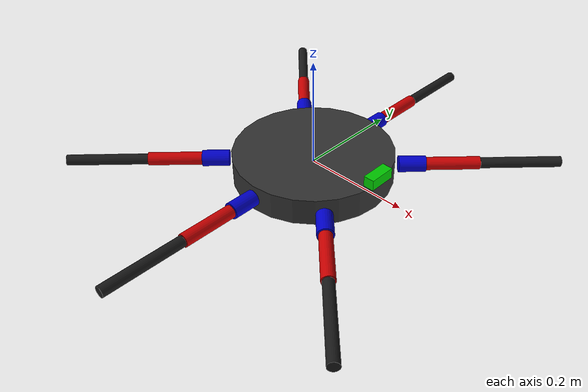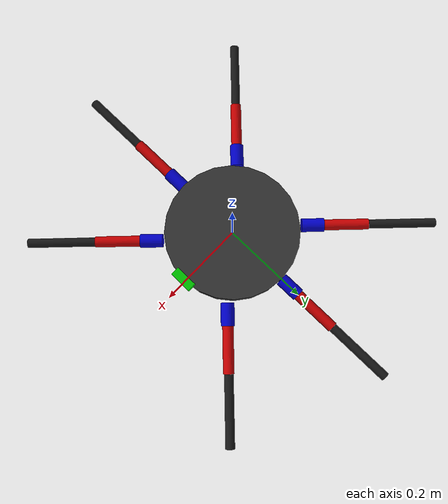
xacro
<?xml version="1.0"?>
<robot xmlns:xacro="http://www.ros.org/wiki/xacro" name="hexapod">

  <!-- ==================== PARAMETERS & DIMENSIONS ==================== -->
  <xacro:property name="body_radius" value="0.15"/>
  <xacro:property name="body_height" value="0.05"/>
  <xacro:property name="body_mass" value="2.0"/>

  <xacro:property name="coxa_len" value="0.05"/>
  <xacro:property name="femur_len" value="0.10"/>
  <xacro:property name="tibia_len" value="0.15"/>

  <xacro:property name="coxa_mass" value="0.1"/>
  <xacro:property name="femur_mass" value="0.15"/>
  <xacro:property name="tibia_mass" value="0.1"/>

  <!-- Standard Inertia Macros -->
  <xacro:macro name="cylinder_inertia" params="m r h">
    <inertia ixx="${(m/12)*(3*r*r + h*h)}" ixy="0.0" ixz="0.0"
             iyy="${(m/12)*(3*r*r + h*h)}" iyz="0.0"
             izz="${(m/2)*(r*r)}"/>
  </xacro:macro>

  <xacro:macro name="box_inertia" params="m x y z">
    <inertia ixx="${(m/12)*(y*y + z*z)}" ixy="0.0" ixz="0.0"
             iyy="${(m/12)*(x*x + z*z)}" iyz="0.0"
             izz="${(m/12)*(x*x + y*y)}"/>
  </xacro:macro>

  <!-- ==================== BASE LINK ==================== -->
  <link name="base_link">
    <visual>
      <geometry>
        <cylinder radius="${body_radius}" length="${body_height}"/>
      </geometry>
      <material name="dark_grey">
        <color rgba="0.2 0.2 0.2 1.0"/>
      </material>
    </visual>
    <collision>
      <geometry>
        <cylinder radius="${body_radius}" length="${body_height}"/>
      </geometry>
    </collision>
    <inertial>
      <mass value="${body_mass}"/>
      <xacro:cylinder_inertia m="${body_mass}" r="${body_radius}" h="${body_height}"/>
    </inertial>
  </link>

  <!-- ==================== LEG MACRO ==================== -->
  <xacro:macro name="hexapod_leg" params="prefix x_offset y_offset yaw_offset">

    <!-- COXA JOINT & LINK -->
    <joint name="${prefix}_coxa_joint" type="revolute">
      <parent link="base_link"/>
      <child link="${prefix}_coxa_link"/>
      <origin xyz="${x_offset} ${y_offset} 0" rpy="0 0 ${yaw_offset}"/>
      <axis xyz="0 0 1"/>
      <limit lower="-1.57" upper="1.57" effort="10.0" velocity="3.0"/>
    </joint>

    <link name="${prefix}_coxa_link">
      <visual>
        <origin xyz="${coxa_len/2} 0 0" rpy="0 1.5708 0"/>
        <geometry>
          <cylinder radius="0.015" length="${coxa_len}"/>
        </geometry>
        <material name="blue">
          <color rgba="0.0 0.0 0.8 1.0"/>
        </material>
      </visual>
      <collision>
        <origin xyz="${coxa_len/2} 0 0" rpy="0 1.5708 0"/>
        <geometry>
          <cylinder radius="0.015" length="${coxa_len}"/>
        </geometry>
      </collision>
      <inertial>
        <origin xyz="${coxa_len/2} 0 0" rpy="0 0 0"/>
        <mass value="${coxa_mass}"/>
        <xacro:cylinder_inertia m="${coxa_mass}" r="0.015" h="${coxa_len}"/>
      </inertial>
    </link>

    <!-- FEMUR JOINT & LINK -->
    <joint name="${prefix}_femur_joint" type="revolute">
      <parent link="${prefix}_coxa_link"/>
      <child link="${prefix}_femur_link"/>
      <origin xyz="${coxa_len} 0 0" rpy="0 0 0"/>
      <axis xyz="0 -1 0"/>
      <limit lower="-1.57" upper="1.57" effort="10.0" velocity="3.0"/>
    </joint>

    <link name="${prefix}_femur_link">
      <visual>
        <origin xyz="${femur_len/2} 0 0" rpy="0 1.5708 0"/>
        <geometry>
          <cylinder radius="0.012" length="${femur_len}"/>
        </geometry>
        <material name="red">
          <color rgba="0.8 0.0 0.0 1.0"/>
        </material>
      </visual>
      <collision>
        <origin xyz="${femur_len/2} 0 0" rpy="0 1.5708 0"/>
        <geometry>
          <cylinder radius="0.012" length="${femur_len}"/>
        </geometry>
      </collision>
      <inertial>
        <origin xyz="${femur_len/2} 0 0" rpy="0 0 0"/>
        <mass value="${femur_mass}"/>
        <xacro:cylinder_inertia m="${femur_mass}" r="0.012" h="${femur_len}"/>
      </inertial>
    </link>

    <!-- TIBIA JOINT & LINK -->
    <joint name="${prefix}_tibia_joint" type="revolute">
      <parent link="${prefix}_femur_link"/>
      <child link="${prefix}_tibia_link"/>
      <origin xyz="${femur_len} 0 0" rpy="0 0 0"/>
      <axis xyz="0 -1 0"/>
      <limit lower="-2.5" upper="0.5" effort="10.0" velocity="3.0"/>
    </joint>

    <link name="${prefix}_tibia_link">
      <visual>
        <origin xyz="${tibia_len/2} 0 0" rpy="0 1.5708 0"/>
        <geometry>
          <cylinder radius="0.01" length="${tibia_len}"/>
        </geometry>
        <material name="black">
          <color rgba="0.1 0.1 0.1 1.0"/>
        </material>
      </visual>
      <collision>
        <origin xyz="${tibia_len/2} 0 0" rpy="0 1.5708 0"/>
        <geometry>
          <cylinder radius="0.01" length="${tibia_len}"/>
        </geometry>
      </collision>
      <inertial>
        <origin xyz="${tibia_len/2} 0 0" rpy="0 0 0"/>
        <mass value="${tibia_mass}"/>
        <xacro:cylinder_inertia m="${tibia_mass}" r="0.01" h="${tibia_len}"/>
      </inertial>
    </link>

  </xacro:macro>

  <!-- ==================== INSTANTIATE 6 LEGS ==================== -->
  <xacro:hexapod_leg prefix="leg1_front_right" x_offset="0.12"  y_offset="-0.10" yaw_offset="-0.7854"/>
  <xacro:hexapod_leg prefix="leg2_mid_right"   x_offset="0.0"   y_offset="-0.15" yaw_offset="-1.5708"/>
  <xacro:hexapod_leg prefix="leg3_back_right"  x_offset="-0.12" y_offset="-0.10" yaw_offset="-2.3562"/>
  <xacro:hexapod_leg prefix="leg4_front_left"  x_offset="0.12"  y_offset="0.10"  yaw_offset="0.7854"/>
  <xacro:hexapod_leg prefix="leg5_mid_left"    x_offset="0.0"   y_offset="0.15"  yaw_offset="1.5708"/>
  <xacro:hexapod_leg prefix="leg6_back_left"   x_offset="-0.12" y_offset="0.10"  yaw_offset="2.3562"/>

  <!-- ==================== CAMERA LINK & SENSOR ==================== -->
  <joint name="camera_joint" type="fixed">
    <parent link="base_link"/>
    <child link="camera_link"/>
    <origin xyz="${body_radius} 0 0.04" rpy="0 0 0"/>
  </joint>

  <link name="camera_link">
    <visual>
      <geometry>
        <box size="0.02 0.05 0.02"/>
      </geometry>
      <material name="green">
        <color rgba="0.0 0.8 0.0 1.0"/>
      </material>
    </visual>
    <collision>
      <geometry>
        <box size="0.02 0.05 0.02"/>
      </geometry>
    </collision>
    <inertial>
      <mass value="0.05"/>
      <xacro:box_inertia m="0.05" x="0.02" y="0.05" z="0.02"/>
    </inertial>
  </link>

  <gazebo reference="camera_link">
    <sensor type="camera" name="pi_camera">
      <update_rate>30.0</update_rate>
      <camera name="head">
        <horizontal_fov>1.0855</horizontal_fov>
        <image>
          <width>640</width>
          <height>480</height>
          <format>R8G8B8</format>
        </image>
        <clip>
          <near>0.1</near>
          <far>100</far>
        </clip>
      </camera>
      <topic>camera/image_raw</topic>
      <gz_frame_id>camera_link</gz_frame_id>
    </sensor>
  </gazebo>

  <!-- ==================== ROS2 CONTROL HARDWARE INTERFACE ==================== -->
  <xacro:macro name="leg_control_interface" params="prefix">
    <joint name="${prefix}_coxa_joint">
      <command_interface name="position"/>
      <state_interface name="position"/>
      <state_interface name="velocity"/>
    </joint>
    <joint name="${prefix}_femur_joint">
      <command_interface name="position"/>
      <state_interface name="position"/>
      <state_interface name="velocity"/>
    </joint>
    <joint name="${prefix}_tibia_joint">
      <command_interface name="position"/>
      <state_interface name="position"/>
      <state_interface name="velocity"/>
    </joint>
  </xacro:macro>

  <ros2_control name="GazeboSimSystem" type="system">
    <hardware>
      <plugin>gz_ros2_control/GazeboSimSystem</plugin>
    </hardware>
    <xacro:leg_control_interface prefix="leg1_front_right"/>
    <xacro:leg_control_interface prefix="leg2_mid_right"/>
    <xacro:leg_control_interface prefix="leg3_back_right"/>
    <xacro:leg_control_interface prefix="leg4_front_left"/>
    <xacro:leg_control_interface prefix="leg5_mid_left"/>
    <xacro:leg_control_interface prefix="leg6_back_left"/>
  </ros2_control>

  <!-- ==================== GAZEBO ROS2 CONTROL PLUGIN ==================== -->
  <gazebo>
    <plugin filename="gz_ros2_control-system" name="gz_ros2_control::GazeboSimROS2ControlPlugin">
      <parameters>$(find hexapod_gazebo)/config/ros2_controllers.yaml</parameters>
    </plugin>
  </gazebo>

</robot>
